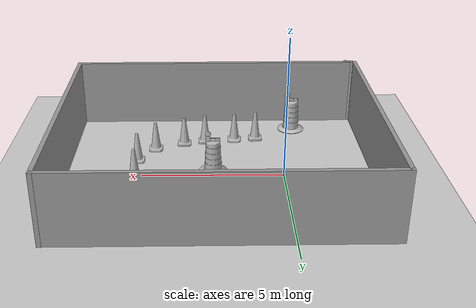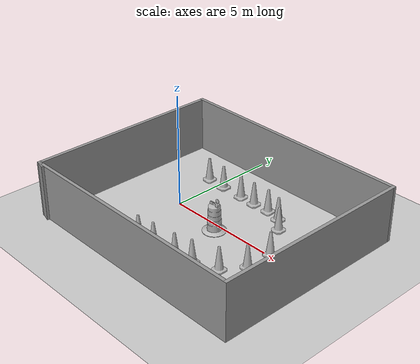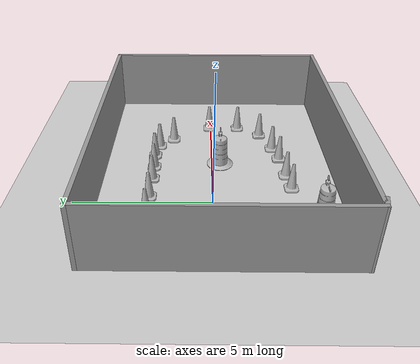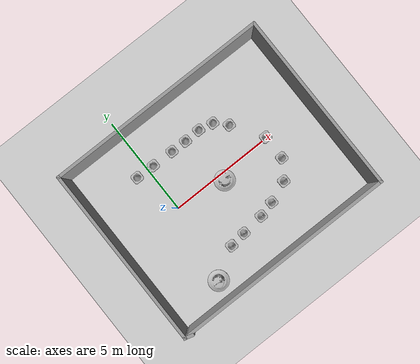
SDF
<sdf version="1.7">
 <world name="default">
  <light name="sun" type="directional">
   <pose>0 0 10 0 -0 0</pose>
   <diffuse>0.8 0.8 0.8 1</diffuse>
   <specular>0.2 0.2 0.2 1</specular>
   <attenuation>
    <range>1000</range>
    <constant>0.9</constant>
    <linear>0.01</linear>
    <quadratic>0.001</quadratic>
   </attenuation>
   <direction>-0.5 0.1 -0.9</direction>
   <spot><inner_angle>0</inner_angle><outer_angle>0</outer_angle><falloff>0</falloff></spot>
  </light>
  <model name="ground_plane">
   <static>1</static>
   <link name="link">
    <collision name="collision">
     <geometry><plane><normal>0 0 1</normal><size>100 100</size></plane></geometry>
     <surface>
      <contact><collide_bitmask>65535</collide_bitmask></contact>
      <friction><ode><mu>100</mu><mu2>50</mu2></ode></friction>
     </surface>
    </collision>
    <visual name="visual">
     <cast_shadows>0</cast_shadows>
     <geometry><plane><normal>0 0 1</normal><size>100 100</size></plane></geometry>
     <material>
      <script><uri>file://media/materials/scripts/gazebo.material</uri><name>Gazebo/Grey</name></script>
     </material>
    </visual>
   </link>
  </model>
  <gravity>0 0 -9.8</gravity>
  <magnetic_field>6e-06 2.3e-05 -4.2e-05</magnetic_field>
  <atmosphere type="adiabatic"/>
  <physics type="ode">
   <max_step_size>0.001</max_step_size>
   <real_time_factor>1</real_time_factor>
   <real_time_update_rate>1000</real_time_update_rate>
  </physics>
  <scene><ambient>0.4 0.4 0.4 1</ambient><background>0.7 0.7 0.7 1</background><shadows>1</shadows></scene>
  <spherical_coordinates>
   <surface_model>EARTH_WGS84</surface_model>
   <latitude_deg>0</latitude_deg>
   <longitude_deg>0</longitude_deg>
   <elevation>0</elevation>
   <heading_deg>0</heading_deg>
  </spherical_coordinates>
  <model name="Untitled">
   <pose>2.26082 -0.284446 0 0 0.00032 0</pose>
   <link name="Wall_10">
    <collision name="Wall_10_Collision">
     <geometry><box><size>9 0.15 2.5</size></box></geometry>
     <pose>0 0 1.25 0 -0 0</pose>
    </collision>
    <visual name="Wall_10_Visual">
     <pose>0 0 1.25 0 -0 0</pose>
     <geometry><box><size>9 0.15 2.5</size></box></geometry>
     <material>
      <script><uri>file://media/materials/scripts/gazebo.material</uri><name>Gazebo/Grey</name></script>
      <ambient>1 1 1 1</ambient>
     </material>
     <meta><layer>0</layer></meta>
    </visual>
    <pose>5.43343 0.053721 0 0 -0 1.5708</pose>
   </link>
   <link name="Wall_11">
    <collision name="Wall_11_Collision">
     <geometry><box><size>11 0.15 2.5</size></box></geometry>
     <pose>0 0 1.25 0 -0 0</pose>
    </collision>
    <visual name="Wall_11_Visual">
     <pose>0 0 1.25 0 -0 0</pose>
     <geometry><box><size>11 0.15 2.5</size></box></geometry>
     <material>
      <script><uri>file://media/materials/scripts/gazebo.material</uri><name>Gazebo/Grey</name></script>
      <ambient>1 1 1 1</ambient>
     </material>
     <meta><layer>0</layer></meta>
    </visual>
    <pose>0.008428 4.47872 0 0 -0 3.14159</pose>
   </link>
   <link name="Wall_12">
    <collision name="Wall_12_Collision">
     <geometry><box><size>9 0.15 2.5</size></box></geometry>
     <pose>0 0 1.25 0 -0 0</pose>
    </collision>
    <visual name="Wall_12_Visual">
     <pose>0 0 1.25 0 -0 0</pose>
     <geometry><box><size>9 0.15 2.5</size></box></geometry>
     <material>
      <script><uri>file://media/materials/scripts/gazebo.material</uri><name>Gazebo/Grey</name></script>
      <ambient>1 1 1 1</ambient>
     </material>
     <meta><layer>0</layer></meta>
    </visual>
    <pose>-5.41657 0.053721 0 0 -0 -1.5708</pose>
   </link>
   <link name="Wall_13">
    <collision name="Wall_13_Collision">
     <geometry><box><size>0.15 0.15 2.5</size></box></geometry>
     <pose>0 0 1.25 0 -0 0</pose>
    </collision>
    <visual name="Wall_13_Visual">
     <pose>0 0 1.25 0 -0 0</pose>
     <geometry><box><size>0.15 0.15 2.5</size></box></geometry>
     <material>
      <script><uri>file://media/materials/scripts/gazebo.material</uri><name>Gazebo/Grey</name></script>
      <ambient>1 1 1 1</ambient>
     </material>
     <meta><layer>0</layer></meta>
    </visual>
    <pose>-5.41657 -4.37128 0 0 -0 0</pose>
   </link>
   <link name="Wall_14">
    <collision name="Wall_14_Collision">
     <geometry><box><size>0.5 0.15 2.5</size></box></geometry>
     <pose>0 0 1.25 0 -0 0</pose>
    </collision>
    <visual name="Wall_14_Visual">
     <pose>0 0 1.25 0 -0 0</pose>
     <geometry><box><size>0.5 0.15 2.5</size></box></geometry>
     <material>
      <script><uri>file://media/materials/scripts/gazebo.material</uri><name>Gazebo/Grey</name></script>
      <ambient>1 1 1 1</ambient>
     </material>
     <meta><layer>0</layer></meta>
    </visual>
    <pose>-5.24754 -4.41657 0 0 -0 -0.261799</pose>
   </link>
   <link name="Wall_9">
    <collision name="Wall_9_Collision">
     <geometry><box><size>10.75 0.15 2.5</size></box></geometry>
     <pose>0 0 1.25 0 -0 0</pose>
    </collision>
    <visual name="Wall_9_Visual">
     <pose>0 0 1.25 0 -0 0</pose>
     <geometry><box><size>10.75 0.15 2.5</size></box></geometry>
     <material>
      <script><uri>file://media/materials/scripts/gazebo.material</uri><name>Gazebo/Grey</name></script>
      <ambient>1 1 1 1</ambient>
     </material>
     <meta><layer>0</layer></meta>
    </visual>
    <pose>0.133428 -4.37128 0 0 -0 0</pose>
   </link>
   <static>1</static>
  </model>
  <model name="Construction Cone">
   <link name="link">
    <collision name="collision">
     <geometry>
      <mesh><scale>10 10 10</scale><uri>model://construction_cone/meshes/construction_cone.dae</uri></mesh>
     </geometry>
    </collision>
    <visual name="visual">
     <geometry>
      <mesh><scale>10 10 10</scale><uri>model://construction_cone/meshes/construction_cone.dae</uri></mesh>
     </geometry>
    </visual>
    <inertial>
     <inertia><ixx>1</ixx><ixy>0</ixy><ixz>0</ixz><iyy>1</iyy><iyz>0</iyz><izz>1</izz></inertia>
     <mass>1</mass>
    </inertial>
   </link>
   <pose>0.855583 -2.90282 -0 0 -0 0</pose>
  </model>
  <model name="Construction Cone_0">
   <link name="link">
    <collision name="collision">
     <geometry>
      <mesh><scale>10 10 10</scale><uri>model://construction_cone/meshes/construction_cone.dae</uri></mesh>
     </geometry>
    </collision>
    <visual name="visual">
     <geometry>
      <mesh><scale>10 10 10</scale><uri>model://construction_cone/meshes/construction_cone.dae</uri></mesh>
     </geometry>
    </visual>
    <inertial>
     <inertia><ixx>1</ixx><ixy>0</ixy><ixz>0</ixz><iyy>1</iyy><iyz>0</iyz><izz>1</izz></inertia>
     <mass>1</mass>
    </inertial>
   </link>
   <pose>1.66263 -2.80229 0 0 -1e-06 0</pose>
  </model>
  <model name="Construction Cone_1">
   <link name="link">
    <collision name="collision">
     <geometry>
      <mesh><scale>10 10 10</scale><uri>model://construction_cone/meshes/construction_cone.dae</uri></mesh>
     </geometry>
    </collision>
    <visual name="visual">
     <geometry>
      <mesh><scale>10 10 10</scale><uri>model://construction_cone/meshes/construction_cone.dae</uri></mesh>
     </geometry>
    </visual>
    <inertial>
     <inertia><ixx>1</ixx><ixy>0</ixy><ixz>0</ixz><iyy>1</iyy><iyz>0</iyz><izz>1</izz></inertia>
     <mass>1</mass>
    </inertial>
   </link>
   <pose>2.78564 -2.67938 -0 0 -0 0</pose>
  </model>
  <model name="Construction Cone_2">
   <link name="link">
    <collision name="collision">
     <geometry>
      <mesh><scale>10 10 10</scale><uri>model://construction_cone/meshes/construction_cone.dae</uri></mesh>
     </geometry>
    </collision>
    <visual name="visual">
     <geometry>
      <mesh><scale>10 10 10</scale><uri>model://construction_cone/meshes/construction_cone.dae</uri></mesh>
     </geometry>
    </visual>
    <inertial>
     <inertia><ixx>1</ixx><ixy>0</ixy><ixz>0</ixz><iyy>1</iyy><iyz>0</iyz><izz>1</izz></inertia>
     <mass>1</mass>
    </inertial>
   </link>
   <pose>3.56858 -2.48312 -0 0 -0 0</pose>
  </model>
  <model name="Construction Barrel">
   <link name="link">
    <inertial>
     <pose>0 0 0.4 0 -0 0</pose>
     <mass>500</mass>
     <inertia><ixx>51.2096</ixx><iyy>51.2096</iyy><izz>25</izz><ixy>0</ixy><ixz>0</ixz><iyz>0</iyz></inertia>
    </inertial>
    <collision name="collision">
     <geometry><mesh><uri>model://construction_barrel/meshes/construction_barrel.dae</uri></mesh></geometry>
    </collision>
    <visual name="visual">
     <geometry><mesh><uri>model://construction_barrel/meshes/construction_barrel.dae</uri></mesh></geometry>
    </visual>
   </link>
   <pose>2.49233 -0.320709 -0 0 0 -2.1e-05</pose>
  </model>
  <model name="Construction Cone_3">
   <link name="link">
    <collision name="collision">
     <geometry>
      <mesh><scale>10 10 10</scale><uri>model://construction_cone/meshes/construction_cone.dae</uri></mesh>
     </geometry>
    </collision>
    <visual name="visual">
     <geometry>
      <mesh><scale>10 10 10</scale><uri>model://construction_cone/meshes/construction_cone.dae</uri></mesh>
     </geometry>
    </visual>
    <inertial>
     <inertia><ixx>1</ixx><ixy>0</ixy><ixz>0</ixz><iyy>1</iyy><iyz>0</iyz><izz>1</izz></inertia>
     <mass>1</mass>
    </inertial>
   </link>
   <pose>4.62087 -2.06322 -0 0 -0 0</pose>
  </model>
  <model name="Construction Cone_4">
   <link name="link">
    <collision name="collision">
     <geometry>
      <mesh><scale>10 10 10</scale><uri>model://construction_cone/meshes/construction_cone.dae</uri></mesh>
     </geometry>
    </collision>
    <visual name="visual">
     <geometry>
      <mesh><scale>10 10 10</scale><uri>model://construction_cone/meshes/construction_cone.dae</uri></mesh>
     </geometry>
    </visual>
    <inertial>
     <inertia><ixx>1</ixx><ixy>0</ixy><ixz>0</ixz><iyy>1</iyy><iyz>0</iyz><izz>1</izz></inertia>
     <mass>1</mass>
    </inertial>
   </link>
   <pose>5.22807 -1.15778 0 -0 -0 -0</pose>
  </model>
  <model name="Construction Cone_5">
   <link name="link">
    <collision name="collision">
     <geometry>
      <mesh><scale>10 10 10</scale><uri>model://construction_cone/meshes/construction_cone.dae</uri></mesh>
     </geometry>
    </collision>
    <visual name="visual">
     <geometry>
      <mesh><scale>10 10 10</scale><uri>model://construction_cone/meshes/construction_cone.dae</uri></mesh>
     </geometry>
    </visual>
    <inertial>
     <inertia><ixx>1</ixx><ixy>0</ixy><ixz>0</ixz><iyy>1</iyy><iyz>0</iyz><izz>1</izz></inertia>
     <mass>1</mass>
    </inertial>
   </link>
   <pose>5.2424 0.067009 -1e-06 2e-06 2e-06 0</pose>
  </model>
  <model name="Construction Cone_6">
   <link name="link">
    <collision name="collision">
     <geometry>
      <mesh><scale>10 10 10</scale><uri>model://construction_cone/meshes/construction_cone.dae</uri></mesh>
     </geometry>
    </collision>
    <visual name="visual">
     <geometry>
      <mesh><scale>10 10 10</scale><uri>model://construction_cone/meshes/construction_cone.dae</uri></mesh>
     </geometry>
    </visual>
    <inertial>
     <inertia><ixx>1</ixx><ixy>0</ixy><ixz>0</ixz><iyy>1</iyy><iyz>0</iyz><izz>1</izz></inertia>
     <mass>1</mass>
    </inertial>
   </link>
   <pose>3.72428 2.11986 -0 1e-06 -0 0</pose>
  </model>
  <model name="Construction Cone_7">
   <link name="link">
    <collision name="collision">
     <geometry>
      <mesh><scale>10 10 10</scale><uri>model://construction_cone/meshes/construction_cone.dae</uri></mesh>
     </geometry>
    </collision>
    <visual name="visual">
     <geometry>
      <mesh><scale>10 10 10</scale><uri>model://construction_cone/meshes/construction_cone.dae</uri></mesh>
     </geometry>
    </visual>
    <inertial>
     <inertia><ixx>1</ixx><ixy>0</ixy><ixz>0</ixz><iyy>1</iyy><iyz>0</iyz><izz>1</izz></inertia>
     <mass>1</mass>
    </inertial>
   </link>
   <pose>2.19671 2.2461 -0 0 -0 0</pose>
  </model>
  <model name="Construction Cone_8">
   <link name="link">
    <collision name="collision">
     <geometry>
      <mesh><scale>10 10 10</scale><uri>model://construction_cone/meshes/construction_cone.dae</uri></mesh>
     </geometry>
    </collision>
    <visual name="visual">
     <geometry>
      <mesh><scale>10 10 10</scale><uri>model://construction_cone/meshes/construction_cone.dae</uri></mesh>
     </geometry>
    </visual>
    <inertial>
     <inertia><ixx>1</ixx><ixy>0</ixy><ixz>0</ixz><iyy>1</iyy><iyz>0</iyz><izz>1</izz></inertia>
     <mass>1</mass>
    </inertial>
   </link>
   <pose>1.40177 2.25924 -1e-05 0 -0 0</pose>
  </model>
  <model name="Construction Cone_9">
   <link name="link">
    <collision name="collision">
     <geometry>
      <mesh><scale>10 10 10</scale><uri>model://construction_cone/meshes/construction_cone.dae</uri></mesh>
     </geometry>
    </collision>
    <visual name="visual">
     <geometry>
      <mesh><scale>10 10 10</scale><uri>model://construction_cone/meshes/construction_cone.dae</uri></mesh>
     </geometry>
    </visual>
    <inertial>
     <inertia><ixx>1</ixx><ixy>0</ixy><ixz>0</ixz><iyy>1</iyy><iyz>0</iyz><izz>1</izz></inertia>
     <mass>1</mass>
    </inertial>
   </link>
   <pose>0.309544 2.2783 -8e-06 1e-06 -0 0</pose>
  </model>
  <model name="Construction Cone_10">
   <link name="link">
    <collision name="collision">
     <geometry>
      <mesh><scale>10 10 10</scale><uri>model://construction_cone/meshes/construction_cone.dae</uri></mesh>
     </geometry>
    </collision>
    <visual name="visual">
     <geometry>
      <mesh><scale>10 10 10</scale><uri>model://construction_cone/meshes/construction_cone.dae</uri></mesh>
     </geometry>
    </visual>
    <inertial>
     <inertia><ixx>1</ixx><ixy>0</ixy><ixz>0</ixz><iyy>1</iyy><iyz>0</iyz><izz>1</izz></inertia>
     <mass>1</mass>
    </inertial>
   </link>
   <pose>-0.618587 2.30815 -0 0 -0 0</pose>
  </model>
  <model name="Construction Barrel_0">
   <link name="link">
    <inertial>
     <pose>0 0 0.4 0 -0 0</pose>
     <mass>500</mass>
     <inertia><ixx>51.2096</ixx><iyy>51.2096</iyy><izz>25</izz><ixy>0</ixy><ixz>0</ixz><iyz>0</iyz></inertia>
    </inertial>
    <collision name="collision">
     <geometry><mesh><uri>model://construction_barrel/meshes/construction_barrel.dae</uri></mesh></geometry>
    </collision>
    <visual name="visual">
     <geometry><mesh><uri>model://construction_barrel/meshes/construction_barrel.dae</uri></mesh></geometry>
    </visual>
   </link>
   <pose>-0.623514 -3.79364 -6e-06 -1e-05 -7e-06 -8e-06</pose>
  </model>
  <model name="Construction Cone_11">
   <link name="link">
    <collision name="collision">
     <geometry>
      <mesh><scale>10 10 10</scale><uri>model://construction_cone/meshes/construction_cone.dae</uri></mesh>
     </geometry>
    </collision>
    <visual name="visual">
     <geometry>
      <mesh><scale>10 10 10</scale><uri>model://construction_cone/meshes/construction_cone.dae</uri></mesh>
     </geometry>
    </visual>
    <inertial>
     <inertia><ixx>1</ixx><ixy>0</ixy><ixz>0</ixz><iyy>1</iyy><iyz>0</iyz><izz>1</izz></inertia>
     <mass>1</mass>
    </inertial>
   </link>
   <pose>3.00279 2.27032 -0 -0 -0 -0</pose>
  </model>
  <model name="Construction Cone_12">
   <link name="link">
    <collision name="collision">
     <geometry>
      <mesh><scale>10 10 10</scale><uri>model://construction_cone/meshes/construction_cone.dae</uri></mesh>
     </geometry>
    </collision>
    <visual name="visual">
     <geometry>
      <mesh><scale>10 10 10</scale><uri>model://construction_cone/meshes/construction_cone.dae</uri></mesh>
     </geometry>
    </visual>
    <inertial>
     <inertia><ixx>1</ixx><ixy>0</ixy><ixz>0</ixz><iyy>1</iyy><iyz>0</iyz><izz>1</izz></inertia>
     <mass>1</mass>
    </inertial>
   </link>
   <pose>4.26676 1.57027 -0 0 -0 0</pose>
  </model>
 </world>
</sdf>
